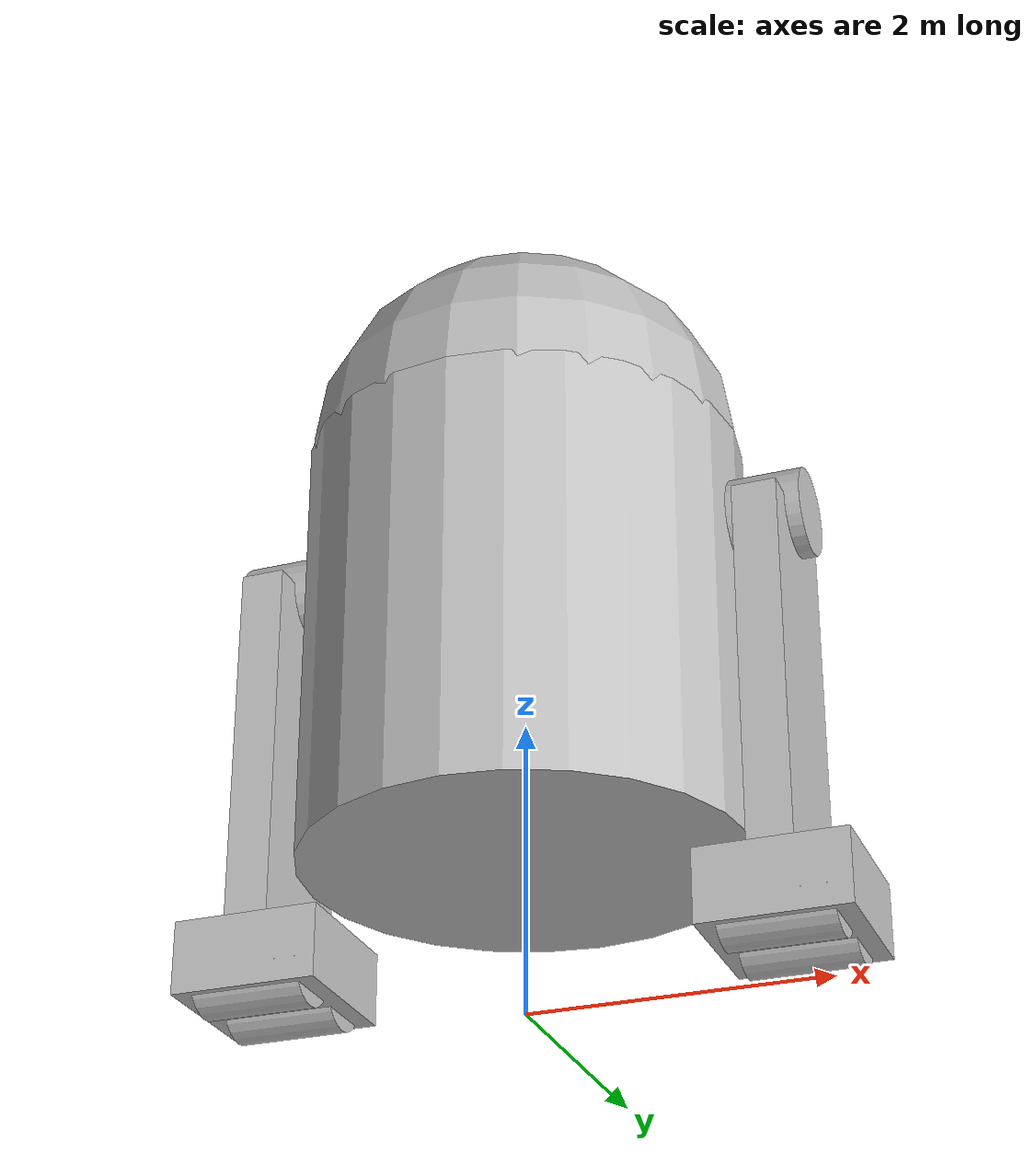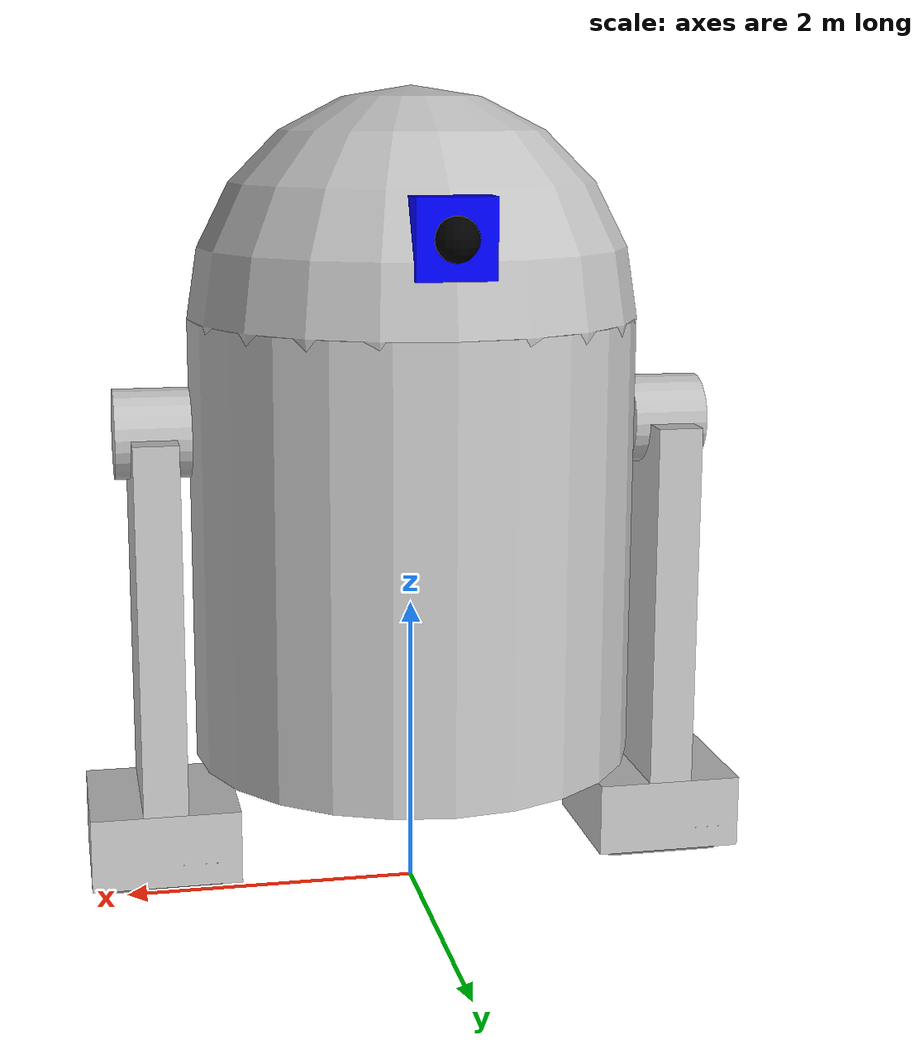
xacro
<?xml version="1.0"?>
<robot xmlns:xacro="http://www.ros.org/wiki/xacro" name="r2d2">

    <xacro:include filename="$(find r2d2_robot_description)/urdf/r2d2_leg.urdf.xacro"/>
    <xacro:include filename="$(find r2d2_robot_description)/urdf/r2d2_body.urdf.xacro"/>
    <xacro:include filename="$(find r2d2_robot_description)/urdf/r2d2_control.urdf.xacro"/>
    <xacro:include filename="$(find r2d2_robot_description)/urdf/r2d2.gazebo.xacro"/>

    <xacro:include filename="$(find r2d2_robot_description)/urdf/general_macros.xacro"/>
    <xacro:include filename="$(find r2d2_robot_description)/urdf/materials.xacro"/>

    <link name="base_unit">
        <pose>0 0 0 0 0 0</pose>
    </link>

    <xacro:body/>

    <xacro:leg side='right'/>
    <xacro:leg side='left'/>

    <xacro:gazebo_tags />

    <xacro:control hardware_flag='gazebo'/>

    <gazebo>
        <plugin filename="libgazebo_ros2_control.so" name="gazebo_ros2_control">
            <parameters>$(find r2d2_robot_description)/config/ros2_controllers.yaml</parameters>
        </plugin>
    </gazebo>

</robot>

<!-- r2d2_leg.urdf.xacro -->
<robot xmlns:xacro="http://www.ros.org/wiki/xacro" name="r2d2">

    <xacro:macro name="leg" params="side">

        <link name="${side}_leg_top_link">
            <inertial>
                <origin xyz="0.0 0.0 0.0" rpy="0.0 0.0 0.0"/>
                <mass value="5.0"/>
                <xacro:solid_cylinder_inertia m="5" h="0.5" r="0.3"/>
            </inertial>
            <visual name="${side}_leg_top_link_visual">
                <origin xyz="0.0 0.0 0.0" rpy="1.5707 0.0 1.5707"/>
                <geometry>
                    <cylinder radius="0.3" length="0.5"/>
                </geometry>
                <material name="silver"/>
            </visual>
            <collision name="${side}_leg_top_link_collision">
                <origin xyz="0.0 0.0 0.0" rpy="1.5707 0.0 1.5707"/>
                <geometry>
                    <cylinder radius="0.3" length="0.5"/>
                </geometry>
            </collision>
        </link>

        <link name="${side}_leg_middle_link">
            <inertial>
                <origin xyz="0.0 0.0 0.0" rpy="0.0 0.0 0.0"/>
                <mass value="10.0"/>
                <xacro:solid_cuboid_inertia m="10" h="2.5" d="0.3" w="1.0"/>
            </inertial>
            <visual name="${side}_leg_middle_link_visual">
                <origin xyz="0.0 0.0 0.0" rpy="0.0 0.0 0.0"/>
                <geometry>
                    <box size="0.3 1.0 2.5"/>
                </geometry>
                <material name="silver"/>
            </visual>
            <collision name="${side}_leg_middle_link_collision">
                <origin xyz="0.0 0.0 0.0" rpy="0.0 0.0 0.0"/>
                <geometry>
                    <box size="0.3 1.0 2.5"/>
                </geometry>
            </collision>
        </link>

        <link name="${side}_leg_foot_link">
            <inertial>
                <origin xyz="0.0 0.0 0.0" rpy="0.0 0.0 0.0"/>
                <mass value="5.0"/>
                <xacro:solid_cuboid_inertia m="5" h="0.5" d="1" w="1"/>
            </inertial>
            <visual name="">
                <origin xyz="0.0 0.0 0.0" rpy="0.0 0.0 0.0"/>
                <geometry>
                    <box size="1.0 1.0 0.5"/>
                </geometry>
                <material name='silver'/>
            </visual>
            <collision>
                <origin xyz="0.0 0.0 0.0" rpy="0.0 0.0 0.0"/>
                <geometry>
                    <box size="1.0 1.0 0.5"/>
                </geometry>
            </collision>
        </link>

        <link name="${side}_front_wheel_link">
            <inertial>
                <origin xyz="0.0 0.0 0.0" rpy="0.0 0.0 0.0"/>
                <mass value="1.0"/>
                <xacro:solid_cylinder_inertia m="1.0" h="0.75" r="0.25"/>
            </inertial>
            <visual name="">
                <origin xyz="0.0 0.0 0.0" rpy="1.5707 0.0 1.5707"/>
                <geometry>
                    <cylinder radius="0.25" length="0.75"/>
                </geometry>
                <material name="silver"/>
            </visual>
            <collision>
                <origin xyz="0.0 0.0 0.0" rpy="1.5707 0.0 1.5707"/>
                <geometry>
                    <cylinder radius="0.25" length="0.75"/>
                </geometry>
            </collision>
        </link>

        <link name="${side}_back_wheel_link">
            <inertial>
                <origin xyz="0.0 0.0 0.0" rpy="0.0 0.0 0.0"/>
                <mass value="1.0"/>
                <xacro:solid_cylinder_inertia m="1.0" h="0.75" r="0.25"/>
            </inertial>
            <visual name="">
                <origin xyz="0.0 0.0 0.0" rpy="1.5707 0.0 1.5707"/>
                <geometry>
                    <cylinder radius="0.25" length="0.75"/>
                </geometry>
                <material name="silver"/>
            </visual>
            <collision>
                <origin xyz="0.0 0.0 0.0" rpy="1.5707 0.0 1.5707"/>
                <geometry>
                    <cylinder radius="0.25" length="0.75"/>
                </geometry>
            </collision>
        </link>

        <joint name="${side}_top_joint" type="fixed">
            <xacro:if value='${side == "right"}'>
                <origin xyz="1.75 0.0 0.75" rpy="0.0 0.0 0.0"/>
            </xacro:if>
            <xacro:unless value='${side == "right"}'>
                <origin xyz="-1.75 0.0 0.75" rpy="0.0 0.0 0.0"/>
            </xacro:unless>
            <parent link="bottom_body"/>
            <child link="${side}_leg_top_link"/>
            <axis xyz="1.0 0.0 0.0"/>
        </joint>

        <joint name="${side}_middle_joint" type="fixed">
            <origin xyz="0.0 0.0 -1.25" rpy="0.0 0.0 0.0"/>
            <parent link="${side}_leg_top_link"/>
            <child link="${side}_leg_middle_link"/>
            <axis xyz="0.0 0.0 0.0"/>
        </joint>

        <joint name="${side}_foot_joint" type="fixed">
            <origin xyz="0.0 0.0 -1.5" rpy="0.0 0.0 0.0"/>
            <parent link="${side}_leg_middle_link"/>
            <child link="${side}_leg_foot_link"/>
            <axis xyz="0.0 0.0 0.0"/>
        </joint>

        <joint name="${side}_front_wheel_joint" type="continuous">
            <origin xyz="0.0 0.25 -0.1" rpy="0.0 0.0 0.0"/>
            <parent link="${side}_leg_foot_link"/>
            <child link="${side}_front_wheel_link"/>
            <axis xyz="1 0.0 0.0"/>
        </joint>

        <joint name="${side}_back_wheel_joint" type="continuous">
            <origin xyz="0.0 -0.25 -0.1" rpy="0.0 0.0 0.0"/>
            <parent link="${side}_leg_foot_link"/>
            <child link="${side}_back_wheel_link"/>
            <axis xyz="1 0.0 0.0"/>
        </joint>

    </xacro:macro>

</robot>

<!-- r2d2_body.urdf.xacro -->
<robot xmlns:xacro="http://www.ros.org/wiki/xacro" name="r2d2">

    <!--
        R2-D2 Main Body

        Includes:
        - Head
        - Torso
        - Camera
    -->

    <xacro:macro name="body">

        <!-- Head -->
        <link name="top_body">
            <inertial>
                <origin xyz="0.0 0.0 0.0" rpy="0.0 0.0 0.0"/>
                <mass value="20.0"/>
                <xacro:solid_sphere_inertia m="20" r="1.5"/>
            </inertial>
            <visual name="top_body_visual">
                <origin xyz="0.0 0.0 0.0" rpy="0.0 0.0 0.0"/>
                <geometry>
                    <sphere radius="1.5"/>
                </geometry>
                <material name="silver"/>
            </visual>
            <collision name='top_body_collision'>
                <origin xyz="0.0 0.0 0.0" rpy="0.0 0.0 0.0"/>
                <geometry>
                    <sphere radius="1.5"/>
                </geometry>
            </collision>
        </link>

        <!-- Torso -->
        <link name="bottom_body">
            <pose>0 0 0 0 0 0</pose>
            <inertial>
                <origin xyz="0.0 0.0 0.0" rpy="0.0 0.0 0.0"/>
                <mass value="30.0"/>
                <xacro:solid_cylinder_inertia m="30" h="3.0" r="1.5"/>
            </inertial>
            <visual name="bottom_body_visual">
                <origin xyz="0.0 0.0 0.0" rpy="0.0 0.0 0.0"/>
                <geometry>
                    <cylinder radius="1.5" length="3.0"/>
                </geometry>
                <material name="silver"/>
            </visual>
            <collision name='bottom_body_collision'>
                <origin xyz="0.0 0.0 0.0" rpy="0.0 0.0 0.0"/>
                <geometry>
                    <cylinder radius="1.5" length="3.0"/>
                </geometry>
            </collision>
        </link>

        <!-- Camera -->
        <link name="camera_housing">
            <inertial>
                <origin xyz="0.0 0.0 0.0" rpy="0.0 0.0 0.0"/>
                <mass value="1.0"/>
                <inertia ixx="0.0" ixy="0.0" ixz="0.0" iyy="0.0" iyz="0.0" izz="0.0"/>
            </inertial>
            <visual name="">
                <origin xyz="0.0 0.0 0.0" rpy="0.0 0.0 0.0"/>
                <geometry>
                    <box size="0.5 0.4 0.5"/>
                </geometry>
                <material name="blue" />
            </visual>
            <collision>
                <origin xyz="0.0 0.0 0.0" rpy="0.0 0.0 0.0"/>
                <geometry>
                    <box size="0.5 0.2 0.5"/>
                </geometry>
            </collision>
        </link>

        <link name="camera_optical_frame">
            <inertial>
                <origin xyz="0.0 0.0 0.0" rpy="0.0 0.0 0.0"/>
                <mass value="1.0"/>
                <inertia ixx="0.0" ixy="0.0" ixz="0.0" iyy="0.0" iyz="0.0" izz="0.0"/>
            </inertial>
            <visual name="">
                <origin xyz="0.0 0.0 0.0" rpy="0.0 0.0 0.0"/>
                <geometry>
                    <sphere radius="0.15"/>
                </geometry>
                <material name="black"/>
            </visual>
            <collision>
                <origin xyz="0.0 0.0 0.0" rpy="0.0 0.0 0.0"/>
                <geometry>
                    <sphere radius="0.15"/>
                </geometry>
            </collision>
        </link>

        <joint name="head_joint" type="revolute">
            <parent link="bottom_body"/>
            <child link="top_body"/>
            <origin xyz="0.0 0.0 1.5" rpy="0.0 0.0 0.0"/>
            <axis xyz="0.0 0.0 1.0"/>
            <limit lower="-1.0" upper="1.0" effort="0.0" velocity="1.0"/>
        </joint>

        <joint name="base_joint" type="fixed">
            <parent link="base_unit"/>
            <child link="bottom_body"/>
            <origin xyz="0.0 0.0 2.5" rpy="0.0 0.0 0.0"/>
        </joint>

        <joint name="camera_housing_joint" type="fixed">
            <origin xyz="0.0 1.25 0.6" rpy="0.0 0.0 0.0"/>
            <parent link="top_body"/>
            <child link="camera_housing"/>
            <axis xyz="0.0 0.0 0.0"/>
        </joint>

        <joint name="camera_optical_joint" type="fixed">
            <origin xyz="0.0 0.15 0.0" rpy="0.0 0.0 0.0"/>
            <parent link="camera_housing"/>
            <child link="camera_optical_frame"/>
            <axis xyz="0.0 0.0 0.0"/>
        </joint>

    </xacro:macro>

</robot>

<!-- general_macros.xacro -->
<robot xmlns:xacro="http://www.ros.org/wiki/xacro" name="r2d2">

    <!-- Inertia tensors-->
    <!-- Solid Sphere -->
    <xacro:macro name="solid_sphere_inertia" params="m r">
        <inertia
            ixx="${(2*m*r*r)/5}"
            ixy="0.0"
            ixz="0.0"
            iyy="${(2*m*r*r)/5}"
            iyz="0.0"
            izz="${(2*m*r*r)/5}"
        />
    </xacro:macro>

    <!-- Hollow Sphere-->
    <xacro:macro name="hollow_sphere_inertia" params="m r">
        <inertia
            ixx="${(2*m*r*r)/3}"
            ixy="0.0"
            ixz="0.0"
            iyy="${(2*m*r*r)/3}"
            iyz="0.0"
            izz="${(2*m*r*r)/3}"
        />
    </xacro:macro>

    <!-- Solid Ellipsoid-->
    <xacro:macro name="solid_ellipsoid_inertia" params="m a b c">
        <inertia
            ixx="${(m*((b*b)+(c*c)))/5}"
            ixy="0.0"
            ixz="0.0"
            iyy="${(m*((a*a)+(c*c)))/5}"
            iyz="0.0"
            izz="${(m*((b*b)+(a*a)))/5}"
        />
    </xacro:macro>

    <!-- Right Circular Cone-->
    <xacro:macro name="cone_inertia" params="r h m">
        <inertia
            ixx="${((3*m*h*h)/5)+((3*m*r*r)/20)}"
            ixy="0.0"
            ixz="0.0"
            iyy="${((3*m*h*h)/5)+((3*m*r*r)/20)}"
            iyz="0.0"
            izz="${(3*m*r*r)/10}"
        />
    </xacro:macro>

    <!-- Solid Cuboid-->
    <xacro:macro name="solid_cuboid_inertia" params="m w h d">
        <inertia
            ixx="${(m*((h*h)+(d*d)))/12}"
            ixy="0.0"
            ixz="0.0"
            iyy="${(m*((w*w)+(d*d)))/12}"
            iyz="0.0"
            izz="${(m*((w*w)+(h*h)))/12}"
        />
    </xacro:macro>

    <!-- Slender Rod (y-axis, end) -->
    <xacro:macro name="slender_rod_end_inertia" params="m l">
        <inertia
            ixx="${(m*l*l)/3}"
            ixy="0.0"
            ixz="0.0"
            iyy="0.0"
            iyz="0.0"
            izz="${(m*l*l)/3}"
        />
    </xacro:macro>

    <!-- Slender Rod (y-axis, center) -->
    <xacro:macro name="slender_rod_center_inertia" params="m l">
        <inertia
            ixx="${(m*l*l)/12}"
            ixy="0.0"
            ixz="0.0"
            iyy="0.0"
            iyz="0.0"
            izz="${(m*l*l)/12}"
        />
    </xacro:macro>

    <!-- Solid Cyliner -->
    <xacro:macro name="solid_cylinder_inertia" params="m r h">
        <inertia
            ixx="${(m*((3*r*r)+(h*h)))/12}"
            ixy="0.0"
            ixz="0.0"
            iyy="${(m*((3*r*r)+(h*h)))/12}"
            iyz="0.0"
            izz="${(m*r*r)/2}"
        />
    </xacro:macro>
</robot>

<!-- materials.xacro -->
<robot xmlns:xacro="http://www.ros.org/wiki/xacro" name="r2d2">

    <material name="red">
        <color rgba="1.0 0.0 0.0 1.0"/>
    </material>

    <material name="blue">
        <color rgba="0.0 0.0 1.0 1.0"/>
    </material>

    <material name="green">
        <color rgba="0.0 1.0 0.0 1.0"/>
    </material>

    <material name="silver">
        <color rgba="${192/255} ${192/255} ${192/255} 1.0"/>
    </material>

    <material name="black">
        <color rgba="0.0 0.0 0.0 1.0"/>
    </material>
</robot>
